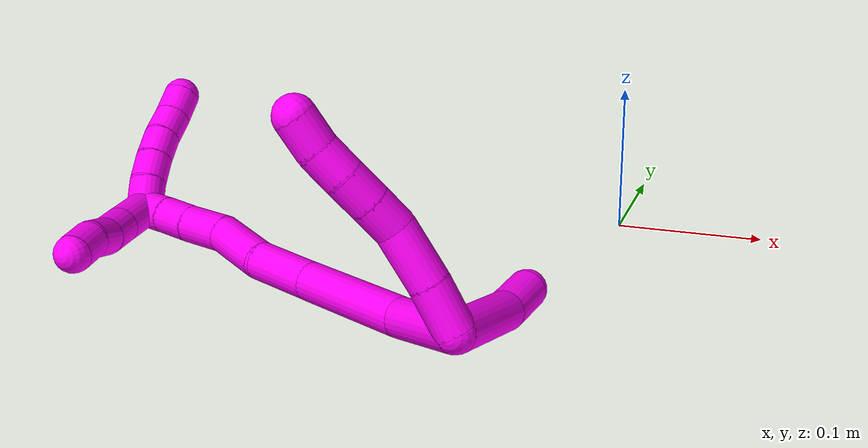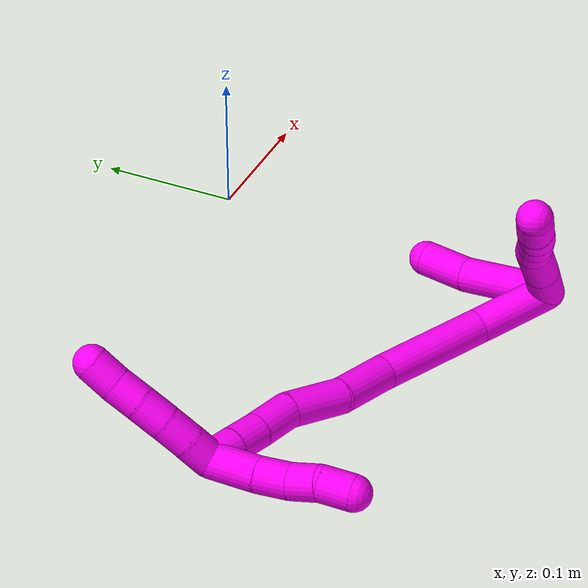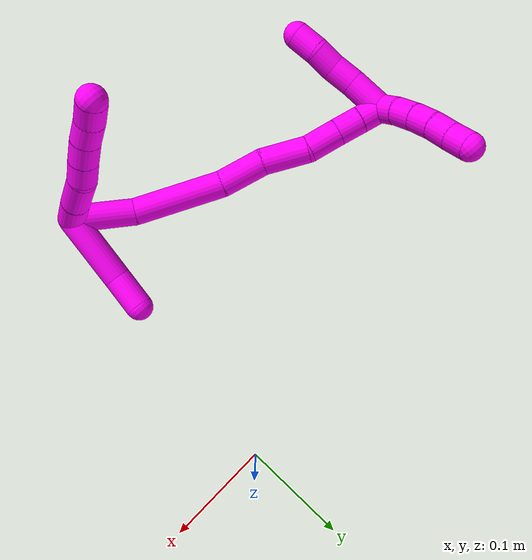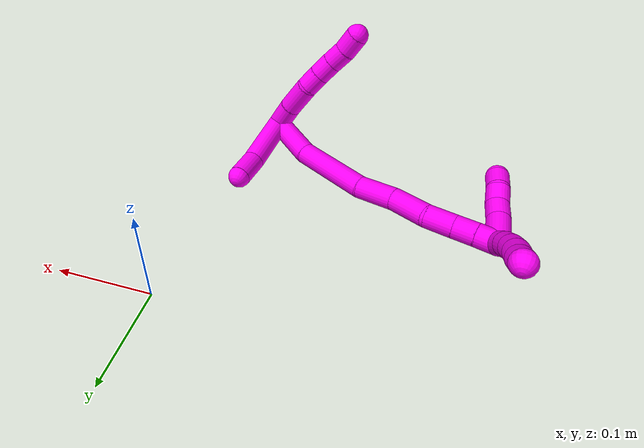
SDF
<sdf version="1.7">
 <world name="default">
  <model name="10">
   <static>0</static>
   <link name="10">
    <collision name="collision-cylinder-e_1_2_8">
     <pose>-0.014115 0.006092 0.002556 -1.17353 -1.13307 0.800225</pose>
     <geometry><cylinder><radius>0.0125</radius><length>0.031169</length></cylinder></geometry>
     <surface>
      <friction><ode><mu>1.16</mu><mu2>1.16</mu2><slip1>0</slip1><slip2>0</slip2></ode></friction>
      <contact><ode><kp>1e+06</kp><kd>1</kd><max_vel>0</max_vel><min_depth>0.001</min_depth></ode></contact>
     </surface>
    </collision>
    <visual name="visual-cylinder-e_1_2_8">
     <pose>-0.014115 0.006092 0.002556 -1.17353 -1.13307 0.800225</pose>
     <geometry><cylinder><radius>0.0125</radius><length>0.031169</length></cylinder></geometry>
     <material><ambient>1 0 0.964706 1</ambient></material>
    </visual>
    <collision name="collision-cylinder-e_2_8_9">
     <pose>-0.044941 0.018004 0.008128 -1.09268 -1.19691 0.786118</pose>
     <geometry><cylinder><radius>0.0125</radius><length>0.0359</length></cylinder></geometry>
     <surface>
      <friction><ode><mu>1.16</mu><mu2>1.16</mu2><slip1>0</slip1><slip2>0</slip2></ode></friction>
      <contact><ode><kp>1e+06</kp><kd>1</kd><max_vel>0</max_vel><min_depth>0.001</min_depth></ode></contact>
     </surface>
    </collision>
    <visual name="visual-cylinder-e_2_8_9">
     <pose>-0.044941 0.018004 0.008128 -1.09268 -1.19691 0.786118</pose>
     <geometry><cylinder><radius>0.0125</radius><length>0.0359</length></cylinder></geometry>
     <material><ambient>1 0 0.964706 1</ambient></material>
    </visual>
    <collision name="collision-cylinder-e_3_9_10">
     <pose>-0.070755 0.025835 0.015404 -0.440858 -1.09336 0.271041</pose>
     <geometry><cylinder><radius>0.0125</radius><length>0.0205</length></cylinder></geometry>
     <surface>
      <friction><ode><mu>1.16</mu><mu2>1.16</mu2><slip1>0</slip1><slip2>0</slip2></ode></friction>
      <contact><ode><kp>1e+06</kp><kd>1</kd><max_vel>0</max_vel><min_depth>0.001</min_depth></ode></contact>
     </surface>
    </collision>
    <visual name="visual-cylinder-e_3_9_10">
     <pose>-0.070755 0.025835 0.015404 -0.440858 -1.09336 0.271041</pose>
     <geometry><cylinder><radius>0.0125</radius><length>0.0205</length></cylinder></geometry>
     <material><ambient>1 0 0.964706 1</ambient></material>
    </visual>
    <collision name="collision-cylinder-e_4_10_11">
     <pose>-0.089014 0.029568 0.02374 -0.400023 -1.12051 0.25298</pose>
     <geometry><cylinder><radius>0.0125</radius><length>0.020337</length></cylinder></geometry>
     <surface>
      <friction><ode><mu>1.16</mu><mu2>1.16</mu2><slip1>0</slip1><slip2>0</slip2></ode></friction>
      <contact><ode><kp>1e+06</kp><kd>1</kd><max_vel>0</max_vel><min_depth>0.001</min_depth></ode></contact>
     </surface>
    </collision>
    <visual name="visual-cylinder-e_4_10_11">
     <pose>-0.089014 0.029568 0.02374 -0.400023 -1.12051 0.25298</pose>
     <geometry><cylinder><radius>0.0125</radius><length>0.020337</length></cylinder></geometry>
     <material><ambient>1 0 0.964706 1</ambient></material>
    </visual>
    <collision name="collision-cylinder-e_5_11_12">
     <pose>-0.107667 0.032925 0.031016 -0.472116 -1.20915 0.329361</pose>
     <geometry><cylinder><radius>0.0125</radius><length>0.02031</length></cylinder></geometry>
     <surface>
      <friction><ode><mu>1.16</mu><mu2>1.16</mu2><slip1>0</slip1><slip2>0</slip2></ode></friction>
      <contact><ode><kp>1e+06</kp><kd>1</kd><max_vel>0</max_vel><min_depth>0.001</min_depth></ode></contact>
     </surface>
    </collision>
    <visual name="visual-cylinder-e_5_11_12">
     <pose>-0.107667 0.032925 0.031016 -0.472116 -1.20915 0.329361</pose>
     <geometry><cylinder><radius>0.0125</radius><length>0.02031</length></cylinder></geometry>
     <material><ambient>1 0 0.964706 1</ambient></material>
    </visual>
    <collision name="collision-cylinder-e_6_12_6">
     <pose>-0.126948 0.038133 0.0374 -0.843006 -1.11577 0.54563</pose>
     <geometry><cylinder><radius>0.0125</radius><length>0.021783</length></cylinder></geometry>
     <surface>
      <friction><ode><mu>1.16</mu><mu2>1.16</mu2><slip1>0</slip1><slip2>0</slip2></ode></friction>
      <contact><ode><kp>1e+06</kp><kd>1</kd><max_vel>0</max_vel><min_depth>0.001</min_depth></ode></contact>
     </surface>
    </collision>
    <visual name="visual-cylinder-e_6_12_6">
     <pose>-0.126948 0.038133 0.0374 -0.843006 -1.11577 0.54563</pose>
     <geometry><cylinder><radius>0.0125</radius><length>0.021783</length></cylinder></geometry>
     <material><ambient>1 0 0.964706 1</ambient></material>
    </visual>
    <collision name="collision-cylinder-e_1_2_13">
     <pose>0.003237 0.000883 -0.033184 -3.115 0.097207 -2.60787</pose>
     <geometry><cylinder><radius>0.0125</radius><length>0.066706</length></cylinder></geometry>
     <surface>
      <friction><ode><mu>1.16</mu><mu2>1.16</mu2><slip1>0</slip1><slip2>0</slip2></ode></friction>
      <contact><ode><kp>1e+06</kp><kd>1</kd><max_vel>0</max_vel><min_depth>0.001</min_depth></ode></contact>
     </surface>
    </collision>
    <visual name="visual-cylinder-e_1_2_13">
     <pose>0.003237 0.000883 -0.033184 -3.115 0.097207 -2.60787</pose>
     <geometry><cylinder><radius>0.0125</radius><length>0.066706</length></cylinder></geometry>
     <material><ambient>1 0 0.964706 1</ambient></material>
    </visual>
    <collision name="collision-cylinder-e_2_13_5">
     <pose>0.005536 0.004858 -0.082698 -2.95443 -0.056367 0.583588</pose>
     <geometry><cylinder><radius>0.0125</radius><length>0.033294</length></cylinder></geometry>
     <surface>
      <friction><ode><mu>1.16</mu><mu2>1.16</mu2><slip1>0</slip1><slip2>0</slip2></ode></friction>
      <contact><ode><kp>1e+06</kp><kd>1</kd><max_vel>0</max_vel><min_depth>0.001</min_depth></ode></contact>
     </surface>
    </collision>
    <visual name="visual-cylinder-e_2_13_5">
     <pose>0.005536 0.004858 -0.082698 -2.95443 -0.056367 0.583588</pose>
     <geometry><cylinder><radius>0.0125</radius><length>0.033294</length></cylinder></geometry>
     <material><ambient>1 0 0.964706 1</ambient></material>
    </visual>
    <collision name="collision-cylinder-e_1_2_14">
     <pose>-0.016284 -0.016688 -0.016063 2.33713 -0.612761 -1.27877</pose>
     <geometry><cylinder><radius>0.0125</radius><length>0.056628</length></cylinder></geometry>
     <surface>
      <friction><ode><mu>1.16</mu><mu2>1.16</mu2><slip1>0</slip1><slip2>0</slip2></ode></friction>
      <contact><ode><kp>1e+06</kp><kd>1</kd><max_vel>0</max_vel><min_depth>0.001</min_depth></ode></contact>
     </surface>
    </collision>
    <visual name="visual-cylinder-e_1_2_14">
     <pose>-0.016284 -0.016688 -0.016063 2.33713 -0.612761 -1.27877</pose>
     <geometry><cylinder><radius>0.0125</radius><length>0.056628</length></cylinder></geometry>
     <material><ambient>1 0 0.964706 1</ambient></material>
    </visual>
    <collision name="collision-cylinder-e_2_14_15">
     <pose>-0.063925 -0.055371 -0.048982 2.22466 -0.847051 -1.48035</pose>
     <geometry><cylinder><radius>0.0125</radius><length>0.083693</length></cylinder></geometry>
     <surface>
      <friction><ode><mu>1.16</mu><mu2>1.16</mu2><slip1>0</slip1><slip2>0</slip2></ode></friction>
      <contact><ode><kp>1e+06</kp><kd>1</kd><max_vel>0</max_vel><min_depth>0.001</min_depth></ode></contact>
     </surface>
    </collision>
    <visual name="visual-cylinder-e_2_14_15">
     <pose>-0.063925 -0.055371 -0.048982 2.22466 -0.847051 -1.48035</pose>
     <geometry><cylinder><radius>0.0125</radius><length>0.083693</length></cylinder></geometry>
     <material><ambient>1 0 0.964706 1</ambient></material>
    </visual>
    <collision name="collision-cylinder-e_3_15_16">
     <pose>-0.113229 -0.08765 -0.070702 2.01267 -1.00582 -1.43057</pose>
     <geometry><cylinder><radius>0.0125</radius><length>0.042498</length></cylinder></geometry>
     <surface>
      <friction><ode><mu>1.16</mu><mu2>1.16</mu2><slip1>0</slip1><slip2>0</slip2></ode></friction>
      <contact><ode><kp>1e+06</kp><kd>1</kd><max_vel>0</max_vel><min_depth>0.001</min_depth></ode></contact>
     </surface>
    </collision>
    <visual name="visual-cylinder-e_3_15_16">
     <pose>-0.113229 -0.08765 -0.070702 2.01267 -1.00582 -1.43057</pose>
     <geometry><cylinder><radius>0.0125</radius><length>0.042498</length></cylinder></geometry>
     <material><ambient>1 0 0.964706 1</ambient></material>
    </visual>
    <collision name="collision-cylinder-e_4_16_17">
     <pose>-0.148735 -0.105816 -0.084976 2.44424 -0.960741 -1.92331</pose>
     <geometry><cylinder><radius>0.0125</radius><length>0.042848</length></cylinder></geometry>
     <surface>
      <friction><ode><mu>1.16</mu><mu2>1.16</mu2><slip1>0</slip1><slip2>0</slip2></ode></friction>
      <contact><ode><kp>1e+06</kp><kd>1</kd><max_vel>0</max_vel><min_depth>0.001</min_depth></ode></contact>
     </surface>
    </collision>
    <visual name="visual-cylinder-e_4_16_17">
     <pose>-0.148735 -0.105816 -0.084976 2.44424 -0.960741 -1.92331</pose>
     <geometry><cylinder><radius>0.0125</radius><length>0.042848</length></cylinder></geometry>
     <material><ambient>1 0 0.964706 1</ambient></material>
    </visual>
    <collision name="collision-cylinder-e_5_17_18">
     <pose>-0.178573 -0.12195 -0.097409 1.92217 -0.949565 -1.26879</pose>
     <geometry><cylinder><radius>0.0125</radius><length>0.0302</length></cylinder></geometry>
     <surface>
      <friction><ode><mu>1.16</mu><mu2>1.16</mu2><slip1>0</slip1><slip2>0</slip2></ode></friction>
      <contact><ode><kp>1e+06</kp><kd>1</kd><max_vel>0</max_vel><min_depth>0.001</min_depth></ode></contact>
     </surface>
    </collision>
    <visual name="visual-cylinder-e_5_17_18">
     <pose>-0.178573 -0.12195 -0.097409 1.92217 -0.949565 -1.26879</pose>
     <geometry><cylinder><radius>0.0125</radius><length>0.0302</length></cylinder></geometry>
     <material><ambient>1 0 0.964706 1</ambient></material>
    </visual>
    <collision name="collision-cylinder-e_6_18_19">
     <pose>-0.200439 -0.136103 -0.102968 1.97626 -0.98051 -1.3615</pose>
     <geometry><cylinder><radius>0.0125</radius><length>0.023079</length></cylinder></geometry>
     <surface>
      <friction><ode><mu>1.16</mu><mu2>1.16</mu2><slip1>0</slip1><slip2>0</slip2></ode></friction>
      <contact><ode><kp>1e+06</kp><kd>1</kd><max_vel>0</max_vel><min_depth>0.001</min_depth></ode></contact>
     </surface>
    </collision>
    <visual name="visual-cylinder-e_6_18_19">
     <pose>-0.200439 -0.136103 -0.102968 1.97626 -0.98051 -1.3615</pose>
     <geometry><cylinder><radius>0.0125</radius><length>0.023079</length></cylinder></geometry>
     <material><ambient>1 0 0.964706 1</ambient></material>
    </visual>
    <collision name="collision-cylinder-e_7_19_1">
     <pose>-0.218581 -0.147683 -0.107822 1.9588 -0.948826 -1.30563</pose>
     <geometry><cylinder><radius>0.0125</radius><length>0.021054</length></cylinder></geometry>
     <surface>
      <friction><ode><mu>1.16</mu><mu2>1.16</mu2><slip1>0</slip1><slip2>0</slip2></ode></friction>
      <contact><ode><kp>1e+06</kp><kd>1</kd><max_vel>0</max_vel><min_depth>0.001</min_depth></ode></contact>
     </surface>
    </collision>
    <visual name="visual-cylinder-e_7_19_1">
     <pose>-0.218581 -0.147683 -0.107822 1.9588 -0.948826 -1.30563</pose>
     <geometry><cylinder><radius>0.0125</radius><length>0.021054</length></cylinder></geometry>
     <material><ambient>1 0 0.964706 1</ambient></material>
    </visual>
    <collision name="collision-cylinder-e_1_1_20">
     <pose>-0.234006 -0.148728 -0.115741 -2.45033 -0.757194 1.67021</pose>
     <geometry><cylinder><radius>0.0125</radius><length>0.02</length></cylinder></geometry>
     <surface>
      <friction><ode><mu>1.16</mu><mu2>1.16</mu2><slip1>0</slip1><slip2>0</slip2></ode></friction>
      <contact><ode><kp>1e+06</kp><kd>1</kd><max_vel>0</max_vel><min_depth>0.001</min_depth></ode></contact>
     </surface>
    </collision>
    <visual name="visual-cylinder-e_1_1_20">
     <pose>-0.234006 -0.148728 -0.115741 -2.45033 -0.757194 1.67021</pose>
     <geometry><cylinder><radius>0.0125</radius><length>0.02</length></cylinder></geometry>
     <material><ambient>1 0 0.964706 1</ambient></material>
    </visual>
    <collision name="collision-cylinder-e_2_20_21">
     <pose>-0.246821 -0.139509 -0.127945 -2.53465 -0.636752 1.62195</pose>
     <geometry><cylinder><radius>0.0125</radius><length>0.02</length></cylinder></geometry>
     <surface>
      <friction><ode><mu>1.16</mu><mu2>1.16</mu2><slip1>0</slip1><slip2>0</slip2></ode></friction>
      <contact><ode><kp>1e+06</kp><kd>1</kd><max_vel>0</max_vel><min_depth>0.001</min_depth></ode></contact>
     </surface>
    </collision>
    <visual name="visual-cylinder-e_2_20_21">
     <pose>-0.246821 -0.139509 -0.127945 -2.53465 -0.636752 1.62195</pose>
     <geometry><cylinder><radius>0.0125</radius><length>0.02</length></cylinder></geometry>
     <material><ambient>1 0 0.964706 1</ambient></material>
    </visual>
    <collision name="collision-cylinder-e_3_21_22">
     <pose>-0.258069 -0.130426 -0.141737 -2.58251 -0.558865 1.57038</pose>
     <geometry><cylinder><radius>0.0125</radius><length>0.02</length></cylinder></geometry>
     <surface>
      <friction><ode><mu>1.16</mu><mu2>1.16</mu2><slip1>0</slip1><slip2>0</slip2></ode></friction>
      <contact><ode><kp>1e+06</kp><kd>1</kd><max_vel>0</max_vel><min_depth>0.001</min_depth></ode></contact>
     </surface>
    </collision>
    <visual name="visual-cylinder-e_3_21_22">
     <pose>-0.258069 -0.130426 -0.141737 -2.58251 -0.558865 1.57038</pose>
     <geometry><cylinder><radius>0.0125</radius><length>0.02</length></cylinder></geometry>
     <material><ambient>1 0 0.964706 1</ambient></material>
    </visual>
    <collision name="collision-cylinder-e_4_22_23">
     <pose>-0.26776 -0.121511 -0.156749 -2.62756 -0.454411 1.44292</pose>
     <geometry><cylinder><radius>0.0125</radius><length>0.02</length></cylinder></geometry>
     <surface>
      <friction><ode><mu>1.16</mu><mu2>1.16</mu2><slip1>0</slip1><slip2>0</slip2></ode></friction>
      <contact><ode><kp>1e+06</kp><kd>1</kd><max_vel>0</max_vel><min_depth>0.001</min_depth></ode></contact>
     </surface>
    </collision>
    <visual name="visual-cylinder-e_4_22_23">
     <pose>-0.26776 -0.121511 -0.156749 -2.62756 -0.454411 1.44292</pose>
     <geometry><cylinder><radius>0.0125</radius><length>0.02</length></cylinder></geometry>
     <material><ambient>1 0 0.964706 1</ambient></material>
    </visual>
    <collision name="collision-cylinder-e_5_23_4">
     <pose>-0.276972 -0.112033 -0.171724 -2.52584 -0.503214 1.35965</pose>
     <geometry><cylinder><radius>0.0125</radius><length>0.02</length></cylinder></geometry>
     <surface>
      <friction><ode><mu>1.16</mu><mu2>1.16</mu2><slip1>0</slip1><slip2>0</slip2></ode></friction>
      <contact><ode><kp>1e+06</kp><kd>1</kd><max_vel>0</max_vel><min_depth>0.001</min_depth></ode></contact>
     </surface>
    </collision>
    <visual name="visual-cylinder-e_5_23_4">
     <pose>-0.276972 -0.112033 -0.171724 -2.52584 -0.503214 1.35965</pose>
     <geometry><cylinder><radius>0.0125</radius><length>0.02</length></cylinder></geometry>
     <material><ambient>1 0 0.964706 1</ambient></material>
    </visual>
    <collision name="collision-cylinder-e_1_1_24">
     <pose>-0.224188 -0.154718 -0.093429 0.081014 0.174092 0.007074</pose>
     <geometry><cylinder><radius>0.0125</radius><length>0.034052</length></cylinder></geometry>
     <surface>
      <friction><ode><mu>1.16</mu><mu2>1.16</mu2><slip1>0</slip1><slip2>0</slip2></ode></friction>
      <contact><ode><kp>1e+06</kp><kd>1</kd><max_vel>0</max_vel><min_depth>0.001</min_depth></ode></contact>
     </surface>
    </collision>
    <visual name="visual-cylinder-e_1_1_24">
     <pose>-0.224188 -0.154718 -0.093429 0.081014 0.174092 0.007074</pose>
     <geometry><cylinder><radius>0.0125</radius><length>0.034052</length></cylinder></geometry>
     <material><ambient>1 0 0.964706 1</ambient></material>
    </visual>
    <collision name="collision-cylinder-e_2_24_25">
     <pose>-0.218899 -0.155993 -0.065693 -0.007395 0.209168 -0.000776</pose>
     <geometry><cylinder><radius>0.0125</radius><length>0.022537</length></cylinder></geometry>
     <surface>
      <friction><ode><mu>1.16</mu><mu2>1.16</mu2><slip1>0</slip1><slip2>0</slip2></ode></friction>
      <contact><ode><kp>1e+06</kp><kd>1</kd><max_vel>0</max_vel><min_depth>0.001</min_depth></ode></contact>
     </surface>
    </collision>
    <visual name="visual-cylinder-e_2_24_25">
     <pose>-0.218899 -0.155993 -0.065693 -0.007395 0.209168 -0.000776</pose>
     <geometry><cylinder><radius>0.0125</radius><length>0.022537</length></cylinder></geometry>
     <material><ambient>1 0 0.964706 1</ambient></material>
    </visual>
    <collision name="collision-cylinder-e_3_25_26">
     <pose>-0.216167 -0.154318 -0.044367 -0.153465 0.037618 -0.002893</pose>
     <geometry><cylinder><radius>0.0125</radius><length>0.020866</length></cylinder></geometry>
     <surface>
      <friction><ode><mu>1.16</mu><mu2>1.16</mu2><slip1>0</slip1><slip2>0</slip2></ode></friction>
      <contact><ode><kp>1e+06</kp><kd>1</kd><max_vel>0</max_vel><min_depth>0.001</min_depth></ode></contact>
     </surface>
    </collision>
    <visual name="visual-cylinder-e_3_25_26">
     <pose>-0.216167 -0.154318 -0.044367 -0.153465 0.037618 -0.002893</pose>
     <geometry><cylinder><radius>0.0125</radius><length>0.020866</length></cylinder></geometry>
     <material><ambient>1 0 0.964706 1</ambient></material>
    </visual>
    <collision name="collision-cylinder-e_4_26_3">
     <pose>-0.213236 -0.153519 -0.02311 0.072383 0.227139 0.00826</pose>
     <geometry><cylinder><radius>0.0125</radius><length>0.022546</length></cylinder></geometry>
     <surface>
      <friction><ode><mu>1.16</mu><mu2>1.16</mu2><slip1>0</slip1><slip2>0</slip2></ode></friction>
      <contact><ode><kp>1e+06</kp><kd>1</kd><max_vel>0</max_vel><min_depth>0.001</min_depth></ode></contact>
     </surface>
    </collision>
    <visual name="visual-cylinder-e_4_26_3">
     <pose>-0.213236 -0.153519 -0.02311 0.072383 0.227139 0.00826</pose>
     <geometry><cylinder><radius>0.0125</radius><length>0.022546</length></cylinder></geometry>
     <material><ambient>1 0 0.964706 1</ambient></material>
    </visual>
    <collision name="collision-sphere-3">
     <pose>-0.210697 -0.154313 -0.012155 0 -0 0</pose>
     <geometry><sphere><radius>0.0125</radius></sphere></geometry>
     <surface>
      <friction><ode><mu>1.16</mu><mu2>1.16</mu2><slip1>0</slip1><slip2>0</slip2></ode></friction>
      <contact><ode><kp>1e+06</kp><kd>1</kd><max_vel>0</max_vel><min_depth>0.001</min_depth></ode></contact>
     </surface>
    </collision>
    <visual name="visual-sphere-3">
     <pose>-0.210697 -0.154313 -0.012155 0 -0 0</pose>
     <geometry><sphere><radius>0.0125</radius></sphere></geometry>
     <material><ambient>1 0 0.964706 1</ambient></material>
    </visual>
    <collision name="collision-sphere-26">
     <pose>-0.215775 -0.152724 -0.034064 0 -0 0</pose>
     <geometry><sphere><radius>0.0125</radius></sphere></geometry>
     <surface>
      <friction><ode><mu>1.16</mu><mu2>1.16</mu2><slip1>0</slip1><slip2>0</slip2></ode></friction>
      <contact><ode><kp>1e+06</kp><kd>1</kd><max_vel>0</max_vel><min_depth>0.001</min_depth></ode></contact>
     </surface>
    </collision>
    <visual name="visual-sphere-26">
     <pose>-0.215775 -0.152724 -0.034064 0 -0 0</pose>
     <geometry><sphere><radius>0.0125</radius></sphere></geometry>
     <material><ambient>1 0 0.964706 1</ambient></material>
    </visual>
    <collision name="collision-sphere-25">
     <pose>-0.216559 -0.155912 -0.05467 0 -0 0</pose>
     <geometry><sphere><radius>0.0125</radius></sphere></geometry>
     <surface>
      <friction><ode><mu>1.16</mu><mu2>1.16</mu2><slip1>0</slip1><slip2>0</slip2></ode></friction>
      <contact><ode><kp>1e+06</kp><kd>1</kd><max_vel>0</max_vel><min_depth>0.001</min_depth></ode></contact>
     </surface>
    </collision>
    <visual name="visual-sphere-25">
     <pose>-0.216559 -0.155912 -0.05467 0 -0 0</pose>
     <geometry><sphere><radius>0.0125</radius></sphere></geometry>
     <material><ambient>1 0 0.964706 1</ambient></material>
    </visual>
    <collision name="collision-sphere-24">
     <pose>-0.221239 -0.156075 -0.076715 0 -0 0</pose>
     <geometry><sphere><radius>0.0125</radius></sphere></geometry>
     <surface>
      <friction><ode><mu>1.16</mu><mu2>1.16</mu2><slip1>0</slip1><slip2>0</slip2></ode></friction>
      <contact><ode><kp>1e+06</kp><kd>1</kd><max_vel>0</max_vel><min_depth>0.001</min_depth></ode></contact>
     </surface>
    </collision>
    <visual name="visual-sphere-24">
     <pose>-0.221239 -0.156075 -0.076715 0 -0 0</pose>
     <geometry><sphere><radius>0.0125</radius></sphere></geometry>
     <material><ambient>1 0 0.964706 1</ambient></material>
    </visual>
    <collision name="collision-sphere-4">
     <pose>-0.281795 -0.106973 -0.178875 0 -0 0</pose>
     <geometry><sphere><radius>0.0125</radius></sphere></geometry>
     <surface>
      <friction><ode><mu>1.16</mu><mu2>1.16</mu2><slip1>0</slip1><slip2>0</slip2></ode></friction>
      <contact><ode><kp>1e+06</kp><kd>1</kd><max_vel>0</max_vel><min_depth>0.001</min_depth></ode></contact>
     </surface>
    </collision>
    <visual name="visual-sphere-4">
     <pose>-0.281795 -0.106973 -0.178875 0 -0 0</pose>
     <geometry><sphere><radius>0.0125</radius></sphere></geometry>
     <material><ambient>1 0 0.964706 1</ambient></material>
    </visual>
    <collision name="collision-sphere-23">
     <pose>-0.27215 -0.117093 -0.164573 0 -0 0</pose>
     <geometry><sphere><radius>0.0125</radius></sphere></geometry>
     <surface>
      <friction><ode><mu>1.16</mu><mu2>1.16</mu2><slip1>0</slip1><slip2>0</slip2></ode></friction>
      <contact><ode><kp>1e+06</kp><kd>1</kd><max_vel>0</max_vel><min_depth>0.001</min_depth></ode></contact>
     </surface>
    </collision>
    <visual name="visual-sphere-23">
     <pose>-0.27215 -0.117093 -0.164573 0 -0 0</pose>
     <geometry><sphere><radius>0.0125</radius></sphere></geometry>
     <material><ambient>1 0 0.964706 1</ambient></material>
    </visual>
    <collision name="collision-sphere-22">
     <pose>-0.263371 -0.125928 -0.148925 0 -0 0</pose>
     <geometry><sphere><radius>0.0125</radius></sphere></geometry>
     <surface>
      <friction><ode><mu>1.16</mu><mu2>1.16</mu2><slip1>0</slip1><slip2>0</slip2></ode></friction>
      <contact><ode><kp>1e+06</kp><kd>1</kd><max_vel>0</max_vel><min_depth>0.001</min_depth></ode></contact>
     </surface>
    </collision>
    <visual name="visual-sphere-22">
     <pose>-0.263371 -0.125928 -0.148925 0 -0 0</pose>
     <geometry><sphere><radius>0.0125</radius></sphere></geometry>
     <material><ambient>1 0 0.964706 1</ambient></material>
    </visual>
    <collision name="collision-sphere-21">
     <pose>-0.252767 -0.134923 -0.134549 0 -0 0</pose>
     <geometry><sphere><radius>0.0125</radius></sphere></geometry>
     <surface>
      <friction><ode><mu>1.16</mu><mu2>1.16</mu2><slip1>0</slip1><slip2>0</slip2></ode></friction>
      <contact><ode><kp>1e+06</kp><kd>1</kd><max_vel>0</max_vel><min_depth>0.001</min_depth></ode></contact>
     </surface>
    </collision>
    <visual name="visual-sphere-21">
     <pose>-0.252767 -0.134923 -0.134549 0 -0 0</pose>
     <geometry><sphere><radius>0.0125</radius></sphere></geometry>
     <material><ambient>1 0 0.964706 1</ambient></material>
    </visual>
    <collision name="collision-sphere-20">
     <pose>-0.240875 -0.144094 -0.121341 0 -0 0</pose>
     <geometry><sphere><radius>0.0125</radius></sphere></geometry>
     <surface>
      <friction><ode><mu>1.16</mu><mu2>1.16</mu2><slip1>0</slip1><slip2>0</slip2></ode></friction>
      <contact><ode><kp>1e+06</kp><kd>1</kd><max_vel>0</max_vel><min_depth>0.001</min_depth></ode></contact>
     </surface>
    </collision>
    <visual name="visual-sphere-20">
     <pose>-0.240875 -0.144094 -0.121341 0 -0 0</pose>
     <geometry><sphere><radius>0.0125</radius></sphere></geometry>
     <material><ambient>1 0 0.964706 1</ambient></material>
    </visual>
    <collision name="collision-sphere-12">
     <pose>-0.117165 0.034559 0.034216 0 -0 0</pose>
     <geometry><sphere><radius>0.0125</radius></sphere></geometry>
     <surface>
      <friction><ode><mu>1.16</mu><mu2>1.16</mu2><slip1>0</slip1><slip2>0</slip2></ode></friction>
      <contact><ode><kp>1e+06</kp><kd>1</kd><max_vel>0</max_vel><min_depth>0.001</min_depth></ode></contact>
     </surface>
    </collision>
    <visual name="visual-sphere-12">
     <pose>-0.117165 0.034559 0.034216 0 -0 0</pose>
     <geometry><sphere><radius>0.0125</radius></sphere></geometry>
     <material><ambient>1 0 0.964706 1</ambient></material>
    </visual>
    <collision name="collision-sphere-11">
     <pose>-0.098168 0.031291 0.027816 0 -0 0</pose>
     <geometry><sphere><radius>0.0125</radius></sphere></geometry>
     <surface>
      <friction><ode><mu>1.16</mu><mu2>1.16</mu2><slip1>0</slip1><slip2>0</slip2></ode></friction>
      <contact><ode><kp>1e+06</kp><kd>1</kd><max_vel>0</max_vel><min_depth>0.001</min_depth></ode></contact>
     </surface>
    </collision>
    <visual name="visual-sphere-11">
     <pose>-0.098168 0.031291 0.027816 0 -0 0</pose>
     <geometry><sphere><radius>0.0125</radius></sphere></geometry>
     <material><ambient>1 0 0.964706 1</ambient></material>
    </visual>
    <collision name="collision-sphere-10">
     <pose>-0.079859 0.027844 0.019664 0 -0 0</pose>
     <geometry><sphere><radius>0.0125</radius></sphere></geometry>
     <surface>
      <friction><ode><mu>1.16</mu><mu2>1.16</mu2><slip1>0</slip1><slip2>0</slip2></ode></friction>
      <contact><ode><kp>1e+06</kp><kd>1</kd><max_vel>0</max_vel><min_depth>0.001</min_depth></ode></contact>
     </surface>
    </collision>
    <visual name="visual-sphere-10">
     <pose>-0.079859 0.027844 0.019664 0 -0 0</pose>
     <geometry><sphere><radius>0.0125</radius></sphere></geometry>
     <material><ambient>1 0 0.964706 1</ambient></material>
    </visual>
    <collision name="collision-sphere-9">
     <pose>-0.061651 0.023825 0.011145 0 -0 0</pose>
     <geometry><sphere><radius>0.0125</radius></sphere></geometry>
     <surface>
      <friction><ode><mu>1.16</mu><mu2>1.16</mu2><slip1>0</slip1><slip2>0</slip2></ode></friction>
      <contact><ode><kp>1e+06</kp><kd>1</kd><max_vel>0</max_vel><min_depth>0.001</min_depth></ode></contact>
     </surface>
    </collision>
    <visual name="visual-sphere-9">
     <pose>-0.061651 0.023825 0.011145 0 -0 0</pose>
     <geometry><sphere><radius>0.0125</radius></sphere></geometry>
     <material><ambient>1 0 0.964706 1</ambient></material>
    </visual>
    <collision name="collision-sphere-2">
     <geometry><sphere><radius>0.0125</radius></sphere></geometry>
     <surface>
      <friction><ode><mu>1.16</mu><mu2>1.16</mu2><slip1>0</slip1><slip2>0</slip2></ode></friction>
      <contact><ode><kp>1e+06</kp><kd>1</kd><max_vel>0</max_vel><min_depth>0.001</min_depth></ode></contact>
     </surface>
    </collision>
    <visual name="visual-sphere-2">
     <geometry><sphere><radius>0.0125</radius></sphere></geometry>
     <material><ambient>1 0 0.964706 1</ambient></material>
    </visual>
    <collision name="collision-sphere-19">
     <pose>-0.210026 -0.142006 -0.105501 0 -0 0</pose>
     <geometry><sphere><radius>0.0125</radius></sphere></geometry>
     <surface>
      <friction><ode><mu>1.16</mu><mu2>1.16</mu2><slip1>0</slip1><slip2>0</slip2></ode></friction>
      <contact><ode><kp>1e+06</kp><kd>1</kd><max_vel>0</max_vel><min_depth>0.001</min_depth></ode></contact>
     </surface>
    </collision>
    <visual name="visual-sphere-19">
     <pose>-0.210026 -0.142006 -0.105501 0 -0 0</pose>
     <geometry><sphere><radius>0.0125</radius></sphere></geometry>
     <material><ambient>1 0 0.964706 1</ambient></material>
    </visual>
    <collision name="collision-sphere-8">
     <pose>-0.02823 0.012183 0.005112 0 -0 0</pose>
     <geometry><sphere><radius>0.0125</radius></sphere></geometry>
     <surface>
      <friction><ode><mu>1.16</mu><mu2>1.16</mu2><slip1>0</slip1><slip2>0</slip2></ode></friction>
      <contact><ode><kp>1e+06</kp><kd>1</kd><max_vel>0</max_vel><min_depth>0.001</min_depth></ode></contact>
     </surface>
    </collision>
    <visual name="visual-sphere-8">
     <pose>-0.02823 0.012183 0.005112 0 -0 0</pose>
     <geometry><sphere><radius>0.0125</radius></sphere></geometry>
     <material><ambient>1 0 0.964706 1</ambient></material>
    </visual>
    <collision name="collision-sphere-6">
     <pose>-0.136731 0.041707 0.040584 0 -0 0</pose>
     <geometry><sphere><radius>0.0125</radius></sphere></geometry>
     <surface>
      <friction><ode><mu>1.16</mu><mu2>1.16</mu2><slip1>0</slip1><slip2>0</slip2></ode></friction>
      <contact><ode><kp>1e+06</kp><kd>1</kd><max_vel>0</max_vel><min_depth>0.001</min_depth></ode></contact>
     </surface>
    </collision>
    <visual name="visual-sphere-6">
     <pose>-0.136731 0.041707 0.040584 0 -0 0</pose>
     <geometry><sphere><radius>0.0125</radius></sphere></geometry>
     <material><ambient>1 0 0.964706 1</ambient></material>
    </visual>
    <collision name="collision-sphere-13">
     <pose>0.006474 0.001765 -0.066368 0 -0 0</pose>
     <geometry><sphere><radius>0.0125</radius></sphere></geometry>
     <surface>
      <friction><ode><mu>1.16</mu><mu2>1.16</mu2><slip1>0</slip1><slip2>0</slip2></ode></friction>
      <contact><ode><kp>1e+06</kp><kd>1</kd><max_vel>0</max_vel><min_depth>0.001</min_depth></ode></contact>
     </surface>
    </collision>
    <visual name="visual-sphere-13">
     <pose>0.006474 0.001765 -0.066368 0 -0 0</pose>
     <geometry><sphere><radius>0.0125</radius></sphere></geometry>
     <material><ambient>1 0 0.964706 1</ambient></material>
    </visual>
    <collision name="collision-sphere-5">
     <pose>0.004598 0.007951 -0.099028 0 -0 0</pose>
     <geometry><sphere><radius>0.0125</radius></sphere></geometry>
     <surface>
      <friction><ode><mu>1.16</mu><mu2>1.16</mu2><slip1>0</slip1><slip2>0</slip2></ode></friction>
      <contact><ode><kp>1e+06</kp><kd>1</kd><max_vel>0</max_vel><min_depth>0.001</min_depth></ode></contact>
     </surface>
    </collision>
    <visual name="visual-sphere-5">
     <pose>0.004598 0.007951 -0.099028 0 -0 0</pose>
     <geometry><sphere><radius>0.0125</radius></sphere></geometry>
     <material><ambient>1 0 0.964706 1</ambient></material>
    </visual>
    <collision name="collision-sphere-14">
     <pose>-0.032568 -0.033375 -0.032127 0 -0 0</pose>
     <geometry><sphere><radius>0.0125</radius></sphere></geometry>
     <surface>
      <friction><ode><mu>1.16</mu><mu2>1.16</mu2><slip1>0</slip1><slip2>0</slip2></ode></friction>
      <contact><ode><kp>1e+06</kp><kd>1</kd><max_vel>0</max_vel><min_depth>0.001</min_depth></ode></contact>
     </surface>
    </collision>
    <visual name="visual-sphere-14">
     <pose>-0.032568 -0.033375 -0.032127 0 -0 0</pose>
     <geometry><sphere><radius>0.0125</radius></sphere></geometry>
     <material><ambient>1 0 0.964706 1</ambient></material>
    </visual>
    <collision name="collision-sphere-15">
     <pose>-0.095282 -0.077366 -0.065837 0 -0 0</pose>
     <geometry><sphere><radius>0.0125</radius></sphere></geometry>
     <surface>
      <friction><ode><mu>1.16</mu><mu2>1.16</mu2><slip1>0</slip1><slip2>0</slip2></ode></friction>
      <contact><ode><kp>1e+06</kp><kd>1</kd><max_vel>0</max_vel><min_depth>0.001</min_depth></ode></contact>
     </surface>
    </collision>
    <visual name="visual-sphere-15">
     <pose>-0.095282 -0.077366 -0.065837 0 -0 0</pose>
     <geometry><sphere><radius>0.0125</radius></sphere></geometry>
     <material><ambient>1 0 0.964706 1</ambient></material>
    </visual>
    <collision name="collision-sphere-16">
     <pose>-0.131176 -0.097933 -0.075567 0 -0 0</pose>
     <geometry><sphere><radius>0.0125</radius></sphere></geometry>
     <surface>
      <friction><ode><mu>1.16</mu><mu2>1.16</mu2><slip1>0</slip1><slip2>0</slip2></ode></friction>
      <contact><ode><kp>1e+06</kp><kd>1</kd><max_vel>0</max_vel><min_depth>0.001</min_depth></ode></contact>
     </surface>
    </collision>
    <visual name="visual-sphere-16">
     <pose>-0.131176 -0.097933 -0.075567 0 -0 0</pose>
     <geometry><sphere><radius>0.0125</radius></sphere></geometry>
     <material><ambient>1 0 0.964706 1</ambient></material>
    </visual>
    <collision name="collision-sphere-17">
     <pose>-0.166295 -0.113698 -0.094384 0 -0 0</pose>
     <geometry><sphere><radius>0.0125</radius></sphere></geometry>
     <surface>
      <friction><ode><mu>1.16</mu><mu2>1.16</mu2><slip1>0</slip1><slip2>0</slip2></ode></friction>
      <contact><ode><kp>1e+06</kp><kd>1</kd><max_vel>0</max_vel><min_depth>0.001</min_depth></ode></contact>
     </surface>
    </collision>
    <visual name="visual-sphere-17">
     <pose>-0.166295 -0.113698 -0.094384 0 -0 0</pose>
     <geometry><sphere><radius>0.0125</radius></sphere></geometry>
     <material><ambient>1 0 0.964706 1</ambient></material>
    </visual>
    <collision name="collision-sphere-18">
     <pose>-0.190852 -0.130201 -0.100434 0 -0 0</pose>
     <geometry><sphere><radius>0.0125</radius></sphere></geometry>
     <surface>
      <friction><ode><mu>1.16</mu><mu2>1.16</mu2><slip1>0</slip1><slip2>0</slip2></ode></friction>
      <contact><ode><kp>1e+06</kp><kd>1</kd><max_vel>0</max_vel><min_depth>0.001</min_depth></ode></contact>
     </surface>
    </collision>
    <visual name="visual-sphere-18">
     <pose>-0.190852 -0.130201 -0.100434 0 -0 0</pose>
     <geometry><sphere><radius>0.0125</radius></sphere></geometry>
     <material><ambient>1 0 0.964706 1</ambient></material>
    </visual>
    <collision name="collision-sphere-1">
     <pose>-0.227137 -0.153361 -0.110142 0 -0 0</pose>
     <geometry><sphere><radius>0.0125</radius></sphere></geometry>
     <surface>
      <friction><ode><mu>1.16</mu><mu2>1.16</mu2><slip1>0</slip1><slip2>0</slip2></ode></friction>
      <contact><ode><kp>1e+06</kp><kd>1</kd><max_vel>0</max_vel><min_depth>0.001</min_depth></ode></contact>
     </surface>
    </collision>
    <visual name="visual-sphere-1">
     <pose>-0.227137 -0.153361 -0.110142 0 -0 0</pose>
     <geometry><sphere><radius>0.0125</radius></sphere></geometry>
     <material><ambient>1 0 0.964706 1</ambient></material>
    </visual>
    <inertial>
     <pose>-0.119336 -0.064791 -0.055976 0 -0 0</pose>
     <mass>0.75</mass>
     <inertia><ixx>-9.1e-05</ixx><ixy>0</ixy><ixz>0</ixz><iyy>2.6e-05</iyy><iyz>0</iyz><izz>0.00011</izz></inertia>
    </inertial>
   </link>
   <pose>-0.040052 -0.268747 0.024144 1.39536 0.649893 -0.176918</pose>
  </model>
 </world>
</sdf>
